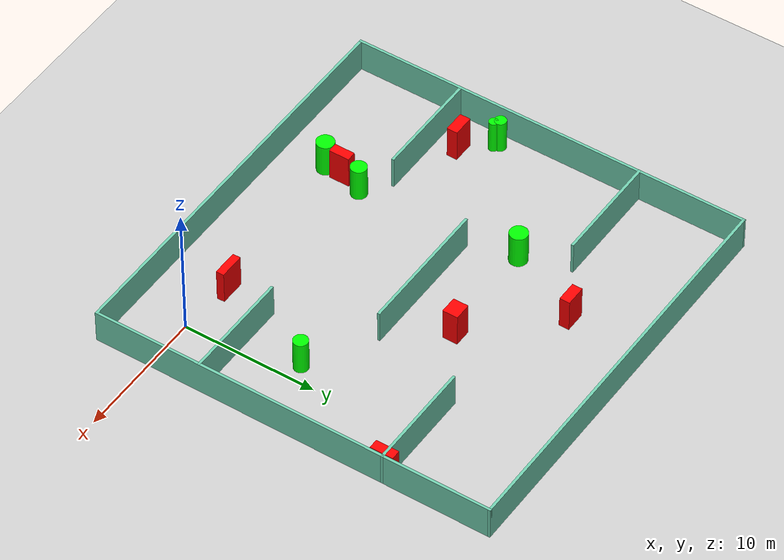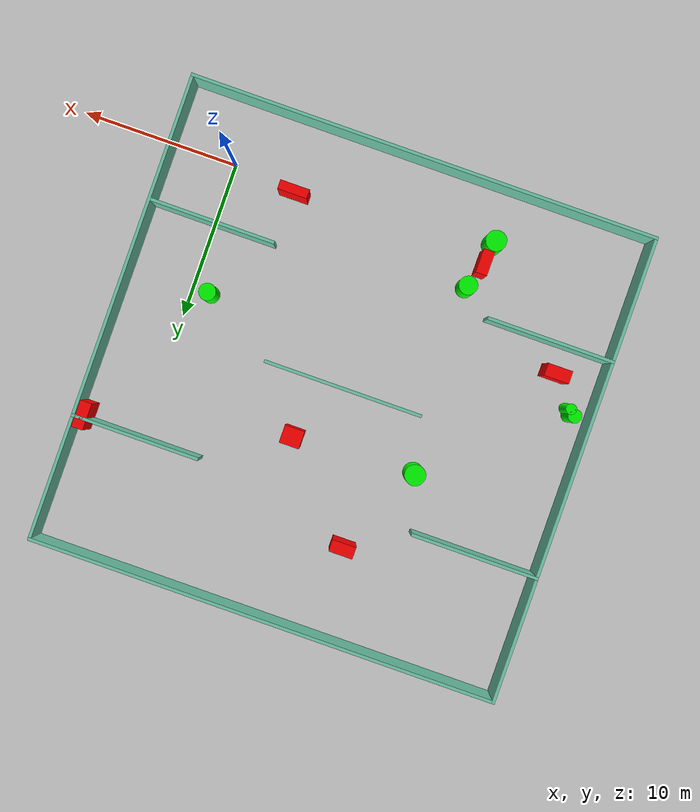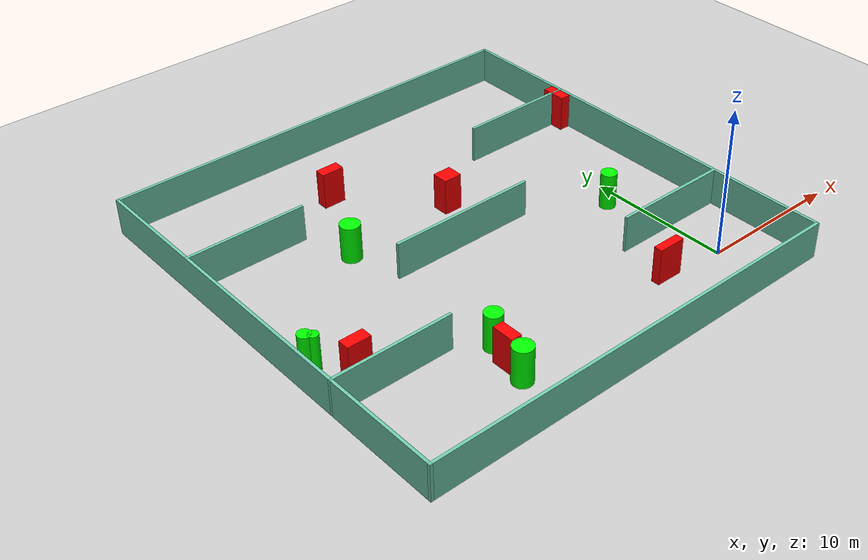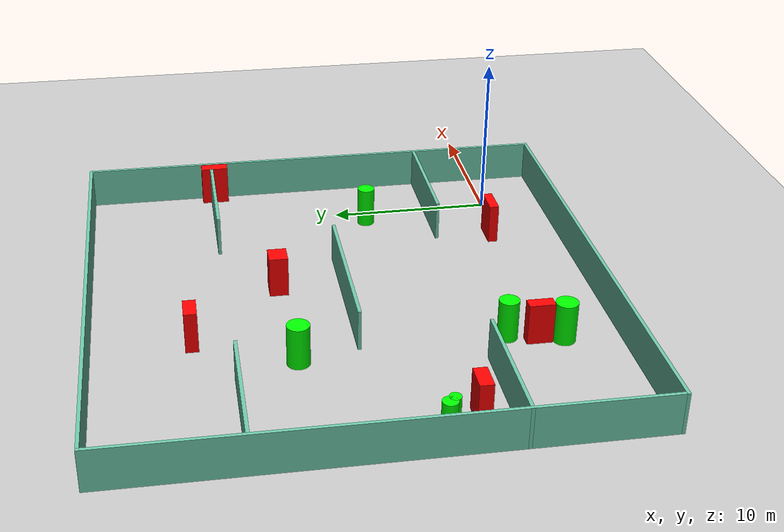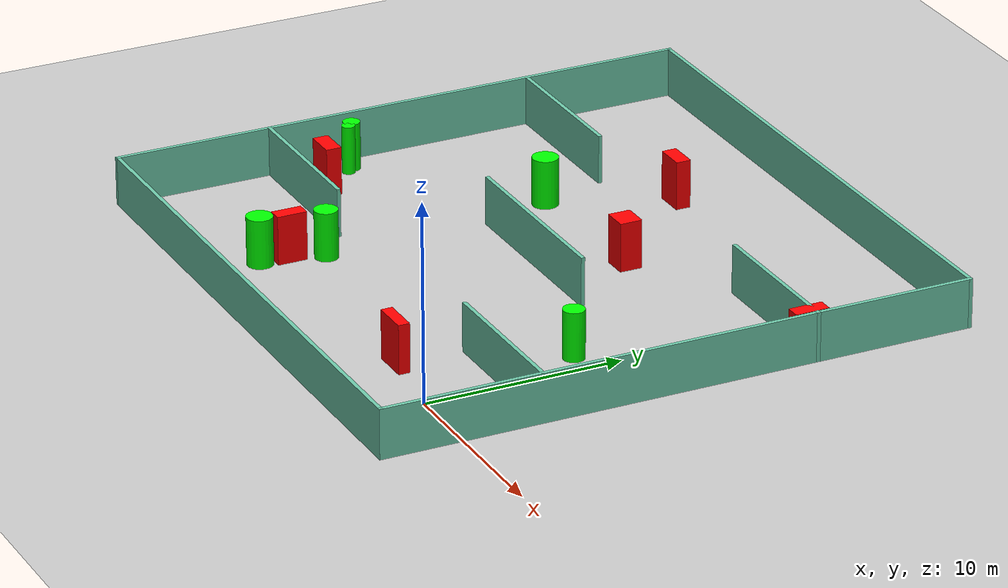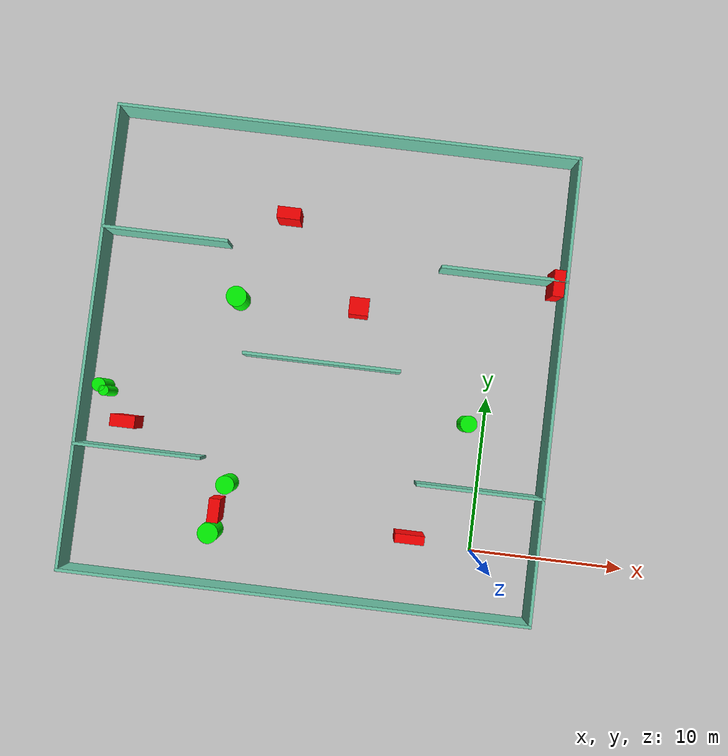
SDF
<sdf version="1.7">
 <world name="default">
  <light name="sun" type="directional">
   <pose>0 0 10 0 -0 0</pose>
   <diffuse>0.8 0.8 0.8 1</diffuse>
   <specular>0.2 0.2 0.2 1</specular>
   <attenuation>
    <range>1000</range>
    <constant>0.9</constant>
    <linear>0.01</linear>
    <quadratic>0.001</quadratic>
   </attenuation>
   <direction>-0.5 0.1 -0.9</direction>
   <spot><inner_angle>0</inner_angle><outer_angle>0</outer_angle><falloff>0</falloff></spot>
  </light>
  <model name="ground_plane">
   <static>1</static>
   <link name="link">
    <collision name="collision">
     <geometry><plane><normal>0 0 1</normal><size>100 100</size></plane></geometry>
     <surface>
      <contact><collide_bitmask>65535</collide_bitmask></contact>
      <friction><ode><mu>100</mu><mu2>50</mu2></ode></friction>
     </surface>
    </collision>
    <visual name="visual">
     <cast_shadows>0</cast_shadows>
     <geometry><plane><normal>0 0 1</normal><size>100 100</size></plane></geometry>
     <material>
      <script><uri>file://media/materials/scripts/gazebo.material</uri><name>Gazebo/Grey</name></script>
     </material>
    </visual>
   </link>
  </model>
  <gravity>0 0 -9.8</gravity>
  <magnetic_field>6e-06 2.3e-05 -4.2e-05</magnetic_field>
  <atmosphere type="adiabatic"/>
  <physics type="ode">
   <max_step_size>0.001</max_step_size>
   <real_time_factor>1</real_time_factor>
   <real_time_update_rate>1000</real_time_update_rate>
  </physics>
  <scene><ambient>0.4 0.4 0.4 1</ambient><background>0.7 0.7 0.7 1</background><shadows>1</shadows></scene>
  <spherical_coordinates>
   <surface_model>EARTH_WGS84</surface_model>
   <latitude_deg>0</latitude_deg>
   <longitude_deg>0</longitude_deg>
   <elevation>0</elevation>
   <heading_deg>0</heading_deg>
  </spherical_coordinates>
  <model name="my_base_walls">
   <link name="Wall_10">
    <collision name="Wall_10_Collision">
     <geometry><box><size>8.2 0.2 2.5</size></box></geometry>
     <pose>0 0 1.25 0 -0 0</pose>
    </collision>
    <visual name="Wall_10_Visual">
     <pose>0 0 1.25 0 -0 0</pose>
     <geometry><box><size>8.2 0.2 2.5</size></box></geometry>
     <material>
      <script><uri>file://media/materials/scripts/gazebo.material</uri><name>Gazebo/Grey</name></script>
      <ambient>0.435294 0.796078 0.67451 1</ambient>
     </material>
     <meta><layer>0</layer></meta>
    </visual>
    <pose>-11 -7 0 0 -0 0</pose>
   </link>
   <link name="Wall_12">
    <collision name="Wall_12_Collision">
     <geometry><box><size>8.2 0.2 2.5</size></box></geometry>
     <pose>0 0 1.25 0 -0 0</pose>
    </collision>
    <visual name="Wall_12_Visual">
     <pose>0 0 1.25 0 -0 0</pose>
     <geometry><box><size>8.2 0.2 2.5</size></box></geometry>
     <material>
      <script><uri>file://media/materials/scripts/gazebo.material</uri><name>Gazebo/Grey</name></script>
      <ambient>0.435294 0.796078 0.67451 1</ambient>
     </material>
     <meta><layer>0</layer></meta>
    </visual>
    <pose>-11 7 0 0 -0 0</pose>
   </link>
   <link name="Wall_14">
    <collision name="Wall_14_Collision">
     <geometry><box><size>8.2 0.2 2.5</size></box></geometry>
     <pose>0 0 1.25 0 -0 0</pose>
    </collision>
    <visual name="Wall_14_Visual">
     <pose>0 0 1.25 0 -0 0</pose>
     <geometry><box><size>8.2 0.2 2.5</size></box></geometry>
     <material>
      <script><uri>file://media/materials/scripts/gazebo.material</uri><name>Gazebo/Grey</name></script>
      <ambient>0.435294 0.796078 0.67451 1</ambient>
     </material>
     <meta><layer>0</layer></meta>
    </visual>
    <pose>11 7 0 0 -0 3.14159</pose>
   </link>
   <link name="Wall_16">
    <collision name="Wall_16_Collision">
     <geometry><box><size>10.2 0.2 2.5</size></box></geometry>
     <pose>0 0 1.25 0 -0 0</pose>
    </collision>
    <visual name="Wall_16_Visual">
     <pose>0 0 1.25 0 -0 0</pose>
     <geometry><box><size>10.2 0.2 2.5</size></box></geometry>
     <material>
      <script><uri>file://media/materials/scripts/gazebo.material</uri><name>Gazebo/Grey</name></script>
      <ambient>0.435294 0.796078 0.67451 1</ambient>
     </material>
     <meta><layer>0</layer></meta>
    </visual>
    <pose>0 0 0 0 -0 3.14159</pose>
   </link>
   <link name="Wall_2">
    <collision name="Wall_2_Collision">
     <geometry><box><size>30.2 0.2 2.5</size></box></geometry>
     <pose>0 0 1.25 0 -0 0</pose>
    </collision>
    <visual name="Wall_2_Visual">
     <pose>0 0 1.25 0 -0 0</pose>
     <geometry><box><size>30.2 0.2 2.5</size></box></geometry>
     <material>
      <script><uri>file://media/materials/scripts/gazebo.material</uri><name>Gazebo/Grey</name></script>
      <ambient>0.435294 0.796078 0.67451 1</ambient>
     </material>
     <meta><layer>0</layer></meta>
    </visual>
    <pose>0 -15 0 0 -0 3.14159</pose>
   </link>
   <link name="Wall_3">
    <collision name="Wall_3_Collision">
     <geometry><box><size>30.2 0.2 2.5</size></box></geometry>
     <pose>0 0 1.25 0 -0 0</pose>
    </collision>
    <visual name="Wall_3_Visual">
     <pose>0 0 1.25 0 -0 0</pose>
     <geometry><box><size>30.2 0.2 2.5</size></box></geometry>
     <material>
      <script><uri>file://media/materials/scripts/gazebo.material</uri><name>Gazebo/Grey</name></script>
      <ambient>0.435294 0.796078 0.67451 1</ambient>
     </material>
     <meta><layer>0</layer></meta>
    </visual>
    <pose>-15 0 0 0 -0 1.5708</pose>
   </link>
   <link name="Wall_4">
    <collision name="Wall_4_Collision">
     <geometry><box><size>30.2 0.2 2.5</size></box></geometry>
     <pose>0 0 1.25 0 -0 0</pose>
    </collision>
    <visual name="Wall_4_Visual">
     <pose>0 0 1.25 0 -0 0</pose>
     <geometry><box><size>30.2 0.2 2.5</size></box></geometry>
     <material>
      <script><uri>file://media/materials/scripts/gazebo.material</uri><name>Gazebo/Grey</name></script>
      <ambient>0.435294 0.796078 0.67451 1</ambient>
     </material>
     <meta><layer>0</layer></meta>
    </visual>
    <pose>0 15 0 0 -0 0</pose>
   </link>
   <link name="Wall_6">
    <collision name="Wall_6_Collision">
     <geometry><box><size>30.2 0.2 2.5</size></box></geometry>
     <pose>0 0 1.25 0 -0 0</pose>
    </collision>
    <visual name="Wall_6_Visual">
     <pose>0 0 1.25 0 -0 0</pose>
     <geometry><box><size>30.2 0.2 2.5</size></box></geometry>
     <material>
      <script><uri>file://media/materials/scripts/gazebo.material</uri><name>Gazebo/Grey</name></script>
      <ambient>0.435294 0.796078 0.67451 1</ambient>
     </material>
     <meta><layer>0</layer></meta>
    </visual>
    <pose>15 0 0 0 -0 1.5708</pose>
   </link>
   <link name="Wall_8">
    <collision name="Wall_8_Collision">
     <geometry><box><size>8.2 0.2 2.5</size></box></geometry>
     <pose>0 0 1.25 0 -0 0</pose>
    </collision>
    <visual name="Wall_8_Visual">
     <pose>0 0 1.25 0 -0 0</pose>
     <geometry><box><size>8.2 0.2 2.5</size></box></geometry>
     <material>
      <script><uri>file://media/materials/scripts/gazebo.material</uri><name>Gazebo/Grey</name></script>
      <ambient>0.435294 0.796078 0.67451 1</ambient>
     </material>
     <meta><layer>0</layer></meta>
    </visual>
    <pose>11 -7 0 0 -0 3.14159</pose>
   </link>
   <static>1</static>
   <pose>-11 11 0 0 -0 0</pose>
  </model>
  <model name="cylinder1">
   <static>1</static>
   <link name="link">
    <inertial>
     <mass>1</mass>
     <inertia><ixx>0.5</ixx><ixy>0</ixy><ixz>0</ixz><iyy>0.5</iyy><iyz>0</iyz><izz>1</izz></inertia>
    </inertial>
    <collision name="collision">
     <geometry><cylinder><radius>0.539360798960962</radius><length>2.5</length></cylinder></geometry>
    </collision>
    <visual name="visual">
     <geometry><cylinder><radius>0.539360798960962</radius><length>2.5</length></cylinder></geometry>
     <material>
      <ambient>0 1 0 1</ambient>
      <diffuse>0 1 0 1</diffuse>
      <specular>0.1 0.1 0.1 1</specular>
      <emissive>0 0 0 0</emissive>
     </material>
    </visual>
   </link>
   <pose>-1.238841398756346 8.181480070789826 1.25 0 0 0</pose>
  </model>
  <model name="cylinder2">
   <static>1</static>
   <link name="link">
    <inertial>
     <mass>1</mass>
     <inertia><ixx>0.5</ixx><ixy>0</ixy><ixz>0</ixz><iyy>0.5</iyy><iyz>0</iyz><izz>1</izz></inertia>
    </inertial>
    <collision name="collision">
     <geometry><cylinder><radius>0.6590766162716017</radius><length>2.5</length></cylinder></geometry>
    </collision>
    <visual name="visual">
     <geometry><cylinder><radius>0.6590766162716017</radius><length>2.5</length></cylinder></geometry>
     <material>
      <ambient>0 1 0 1</ambient>
      <diffuse>0 1 0 1</diffuse>
      <specular>0.1 0.1 0.1 1</specular>
      <emissive>0 0 0 0</emissive>
     </material>
    </visual>
   </link>
   <pose>-16.823202879018023 -0.6020951092504077 1.25 0 0 0</pose>
  </model>
  <model name="cylinder3">
   <static>1</static>
   <link name="link">
    <inertial>
     <mass>1</mass>
     <inertia><ixx>0.5</ixx><ixy>0</ixy><ixz>0</ixz><iyy>0.5</iyy><iyz>0</iyz><izz>1</izz></inertia>
    </inertial>
    <collision name="collision">
     <geometry><cylinder><radius>0.5918656636506192</radius><length>2.5</length></cylinder></geometry>
    </collision>
    <visual name="visual">
     <geometry><cylinder><radius>0.5918656636506192</radius><length>2.5</length></cylinder></geometry>
     <material>
      <ambient>0 1 0 1</ambient>
      <diffuse>0 1 0 1</diffuse>
      <specular>0.1 0.1 0.1 1</specular>
      <emissive>0 0 0 0</emissive>
     </material>
    </visual>
   </link>
   <pose>-16.1237723548813 2.526600530726925 1.25 0 0 0</pose>
  </model>
  <model name="cylinder4">
   <static>1</static>
   <link name="link">
    <inertial>
     <mass>1</mass>
     <inertia><ixx>0.5</ixx><ixy>0</ixy><ixz>0</ixz><iyy>0.5</iyy><iyz>0</iyz><izz>1</izz></inertia>
    </inertial>
    <collision name="collision">
     <geometry><cylinder><radius>0.33870539014661827</radius><length>2.5</length></cylinder></geometry>
    </collision>
    <visual name="visual">
     <geometry><cylinder><radius>0.33870539014661827</radius><length>2.5</length></cylinder></geometry>
     <material>
      <ambient>0 1 0 1</ambient>
      <diffuse>0 1 0 1</diffuse>
      <specular>0.1 0.1 0.1 1</specular>
      <emissive>0 0 0 0</emissive>
     </material>
    </visual>
   </link>
   <pose>-24.54581504991631 7.555570266286242 1.25 0 0 0</pose>
  </model>
  <model name="cylinder5">
   <static>1</static>
   <link name="link">
    <inertial>
     <mass>1</mass>
     <inertia><ixx>0.5</ixx><ixy>0</ixy><ixz>0</ixz><iyy>0.5</iyy><iyz>0</iyz><izz>1</izz></inertia>
    </inertial>
    <collision name="collision">
     <geometry><cylinder><radius>0.6630743705421372</radius><length>2.5</length></cylinder></geometry>
    </collision>
    <visual name="visual">
     <geometry><cylinder><radius>0.6630743705421372</radius><length>2.5</length></cylinder></geometry>
     <material>
      <ambient>0 1 0 1</ambient>
      <diffuse>0 1 0 1</diffuse>
      <specular>0.1 0.1 0.1 1</specular>
      <emissive>0 0 0 0</emissive>
     </material>
    </visual>
   </link>
   <pose>-16.909728654444045 14.517006289632683 1.25 0 0 0</pose>
  </model>
  <model name="cylinder6">
   <static>1</static>
   <link name="link">
    <inertial>
     <mass>1</mass>
     <inertia><ixx>0.5</ixx><ixy>0</ixy><ixz>0</ixz><iyy>0.5</iyy><iyz>0</iyz><izz>1</izz></inertia>
    </inertial>
    <collision name="collision">
     <geometry><cylinder><radius>0.43671598164712316</radius><length>2.5</length></cylinder></geometry>
    </collision>
    <visual name="visual">
     <geometry><cylinder><radius>0.43671598164712316</radius><length>2.5</length></cylinder></geometry>
     <material>
      <ambient>0 1 0 1</ambient>
      <diffuse>0 1 0 1</diffuse>
      <specular>0.1 0.1 0.1 1</specular>
      <emissive>0 0 0 0</emissive>
     </material>
    </visual>
   </link>
   <pose>-24.896611412860118 7.88483410250435 1.25 0 0 0</pose>
  </model>
  <model name="box1">
   <static>1</static>
   <link name="link">
    <inertial>
     <mass>1</mass>
     <inertia><ixx>0.083</ixx><ixy>0</ixy><ixz>0</ixz><iyy>0.083</iyy><iyz>0</iyz><izz>0.083</izz></inertia>
    </inertial>
    <collision name="collision">
     <geometry><box><size>0.7226811960834043 1.518146662730425 2.5</size></box></geometry>
    </collision>
    <visual name="visual">
     <geometry><box><size>0.7226811960834043 1.518146662730425 2.5</size></box></geometry>
     <material>
      <ambient>1 0 0 1</ambient>
      <diffuse>1 0 0 1</diffuse>
      <specular>0.1 0.1 0.1 1</specular>
      <emissive>0 0 0 0</emissive>
     </material>
    </visual>
    <sensor name="my_contact" type="contact">
     <contact><collision>box_collision</collision><topic>__default_topic__</topic></contact>
    </sensor>
   </link>
   <pose>-16.63509518967887 0.8443972077683695 1.25 0 0 0</pose>
  </model>
  <model name="box2">
   <static>1</static>
   <link name="link">
    <inertial>
     <mass>1</mass>
     <inertia><ixx>0.083</ixx><ixy>0</ixy><ixz>0</ixz><iyy>0.083</iyy><iyz>0</iyz><izz>0.083</izz></inertia>
    </inertial>
    <collision name="collision">
     <geometry><box><size>1.2734186866356556 1.1332795615725577 2.5</size></box></geometry>
    </collision>
    <visual name="visual">
     <geometry><box><size>1.2734186866356556 1.1332795615725577 2.5</size></box></geometry>
     <material>
      <ambient>1 0 0 1</ambient>
      <diffuse>1 0 0 1</diffuse>
      <specular>0.1 0.1 0.1 1</specular>
      <emissive>0 0 0 0</emissive>
     </material>
    </visual>
    <sensor name="my_contact" type="contact">
     <contact><collision>box_collision</collision><topic>__default_topic__</topic></contact>
    </sensor>
   </link>
   <pose>-9.043226708454213 14.812780835579204 1.25 0 0 0</pose>
  </model>
  <model name="box3">
   <static>1</static>
   <link name="link">
    <inertial>
     <mass>1</mass>
     <inertia><ixx>0.083</ixx><ixy>0</ixy><ixz>0</ixz><iyy>0.083</iyy><iyz>0</iyz><izz>0.083</izz></inertia>
    </inertial>
    <collision name="collision">
     <geometry><box><size>1.8839961133819472 0.5805190192999745 2.5</size></box></geometry>
    </collision>
    <visual name="visual">
     <geometry><box><size>1.8839961133819472 0.5805190192999745 2.5</size></box></geometry>
     <material>
      <ambient>1 0 0 1</ambient>
      <diffuse>1 0 0 1</diffuse>
      <specular>0.1 0.1 0.1 1</specular>
      <emissive>0 0 0 0</emissive>
     </material>
    </visual>
    <sensor name="my_contact" type="contact">
     <contact><collision>box_collision</collision><topic>__default_topic__</topic></contact>
    </sensor>
   </link>
   <pose>-4.124861209135606 0.5326937665320663 1.25 0 0 0</pose>
  </model>
  <model name="box4">
   <static>1</static>
   <link name="link">
    <inertial>
     <mass>1</mass>
     <inertia><ixx>0.083</ixx><ixy>0</ixy><ixz>0</ixz><iyy>0.083</iyy><iyz>0</iyz><izz>0.083</izz></inertia>
    </inertial>
    <collision name="collision">
     <geometry><box><size>1.5257679416643322 0.7574251782414281 2.5</size></box></geometry>
    </collision>
    <visual name="visual">
     <geometry><box><size>1.5257679416643322 0.7574251782414281 2.5</size></box></geometry>
     <material>
      <ambient>1 0 0 1</ambient>
      <diffuse>1 0 0 1</diffuse>
      <specular>0.1 0.1 0.1 1</specular>
      <emissive>0 0 0 0</emissive>
     </material>
    </visual>
    <sensor name="my_contact" type="contact">
     <contact><collision>box_collision</collision><topic>__default_topic__</topic></contact>
    </sensor>
   </link>
   <pose>-14.229884028091417 20.25095354329309 1.25 0 0 0</pose>
  </model>
  <model name="box5">
   <static>1</static>
   <link name="link">
    <inertial>
     <mass>1</mass>
     <inertia><ixx>0.083</ixx><ixy>0</ixy><ixz>0</ixz><iyy>0.083</iyy><iyz>0</iyz><izz>0.083</izz></inertia>
    </inertial>
    <collision name="collision">
     <geometry><box><size>0.729948423668618 1.7199799847871855 2.5</size></box></geometry>
    </collision>
    <visual name="visual">
     <geometry><box><size>0.729948423668618 1.7199799847871855 2.5</size></box></geometry>
     <material>
      <ambient>1 0 0 1</ambient>
      <diffuse>1 0 0 1</diffuse>
      <specular>0.1 0.1 0.1 1</specular>
      <emissive>0 0 0 0</emissive>
     </material>
    </visual>
    <sensor name="my_contact" type="contact">
     <contact><collision>box_collision</collision><topic>__default_topic__</topic></contact>
    </sensor>
   </link>
   <pose>3.4919535544825813 17.807246994609443 1.25 0 0 0</pose>
  </model>
  <model name="box6">
   <static>1</static>
   <link name="link">
    <inertial>
     <mass>1</mass>
     <inertia><ixx>0.083</ixx><ixy>0</ixy><ixz>0</ixz><iyy>0.083</iyy><iyz>0</iyz><izz>0.083</izz></inertia>
    </inertial>
    <collision name="collision">
     <geometry><box><size>1.5925614547005915 0.7967139887701515 2.5</size></box></geometry>
    </collision>
    <visual name="visual">
     <geometry><box><size>1.5925614547005915 0.7967139887701515 2.5</size></box></geometry>
     <material>
      <ambient>1 0 0 1</ambient>
      <diffuse>1 0 0 1</diffuse>
      <specular>0.1 0.1 0.1 1</specular>
      <emissive>0 0 0 0</emissive>
     </material>
    </visual>
    <sensor name="my_contact" type="contact">
     <contact><collision>box_collision</collision><topic>__default_topic__</topic></contact>
    </sensor>
   </link>
   <pose>-23.095238605904406 5.759149468539988 1.25 0 0 0</pose>
  </model>
 </world>
</sdf>
